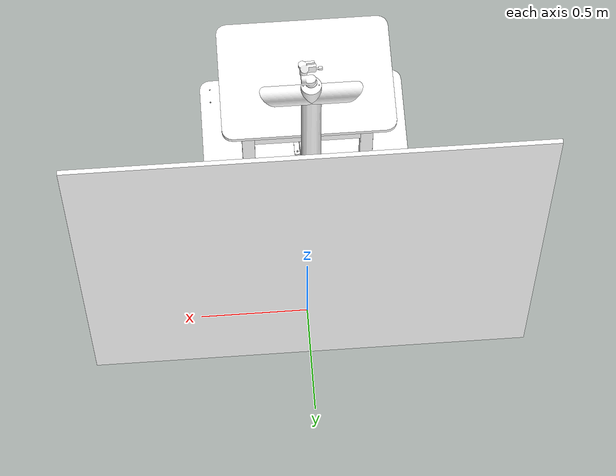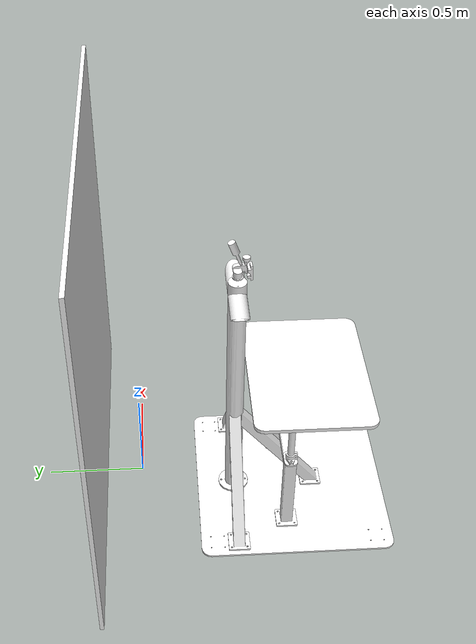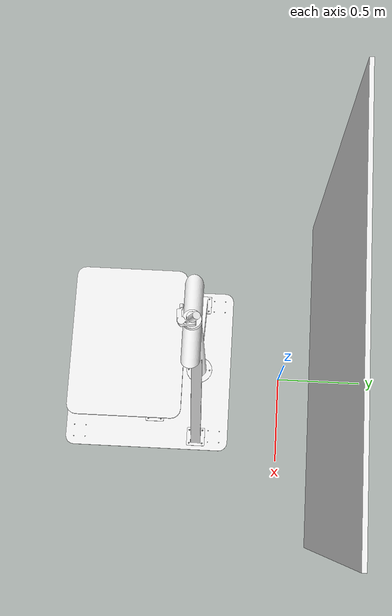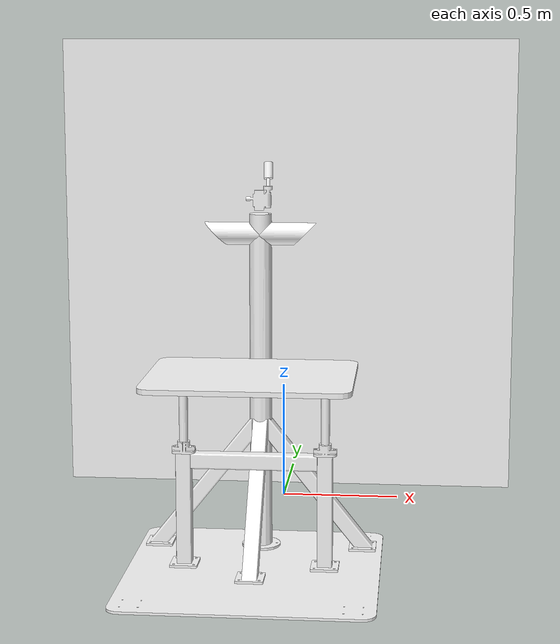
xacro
<?xml version="1.0" encoding="utf-8"?>
<robot
  name="shelf" xmlns:xacro="http://wiki.ros.org/xacro">
  <link
    name="base_link">
    <inertial>
      <origin
        xyz="-0.0514852228037534 -0.796594817886908 -0.0801908666316181"
        rpy="0 0 0" />
      <mass
        value="82.9505113272348" />
      <inertia
        ixx="6.49423912277532"
        ixy="1.14324329542244E-15"
        ixz="2.18534500391539E-19"
        iyy="6.49177902944485"
        iyz="5.93853941289837E-07"
        izz="12.9815895282492" />
    </inertial>
    <visual>
      <origin
        xyz="0 0 0"
        rpy="0 0 0" />
      <geometry>
        <mesh
          filename="package://shelf/meshes/base_link.STL" />
      </geometry>
      <material
        name="">
        <color
          rgba="1 1 1 1" />
      </material>
    </visual>
    <collision>
      <origin
        xyz="0 0 0"
        rpy="0 0 0" />
      <geometry>
        <mesh
          filename="package://shelf/meshes/base_link.STL" />
      </geometry>
    </collision>
  </link>
  <link
    name="left-obl-1">
    <inertial>
      <origin
        xyz="-0.146230246641277 0.198143279093593 -4.0652288960108E-06"
        rpy="0 0 0" />
      <mass
        value="4.15584212369352" />
      <inertia
        ixx="0.112252927087713"
        ixy="0.0837479479460412"
        ixz="-2.74721842191261E-06"
        iyy="0.0703122721434734"
        iyz="3.77730010594157E-06"
        izz="0.177260146809143" />
    </inertial>
    <visual>
      <origin
        xyz="0 0 0"
        rpy="0 0 0" />
      <geometry>
        <mesh
          filename="package://shelf/meshes/left-obl-1.STL" />
      </geometry>
      <material
        name="">
        <color
          rgba="1 1 1 1" />
      </material>
    </visual>
    <collision>
      <origin
        xyz="0 0 0"
        rpy="0 0 0" />
      <geometry>
        <mesh
          filename="package://shelf/meshes/left-obl-1.STL" />
      </geometry>
    </collision>
  </link>
  <joint
    name="joint1"
    type="fixed">
    <origin
      xyz="-0.471485222803753 -0.491470974847297 -0.0720851780501181"
      rpy="1.5707963267949 0 3.14159265358979" />
    <parent
      link="base_link" />
    <child
      link="left-obl-1" />
    <axis
      xyz="0 0 0" />
  </joint>
  <link
    name="left-stand-1">
    <inertial>
      <origin
        xyz="0.0273672467617748 -1.11022302462516E-16 0"
        rpy="0 0 0" />
      <mass
        value="2.67028289686023" />
      <inertia
        ixx="0.00314327701135894"
        ixy="-2.59915745659437E-18"
        ixz="2.75349035895795E-18"
        iyy="0.0412735877196404"
        iyz="3.72562147893883E-19"
        izz="0.0412735877196404" />
    </inertial>
    <visual>
      <origin
        xyz="0 0 0"
        rpy="0 0 0" />
      <geometry>
        <mesh
          filename="package://shelf/meshes/left-stand-1.STL" />
      </geometry>
      <material
        name="">
        <color
          rgba="1 1 1 1" />
      </material>
    </visual>
    <collision>
      <origin
        xyz="0 0 0"
        rpy="0 0 0" />
      <geometry>
        <mesh
          filename="package://shelf/meshes/left-stand-1.STL" />
      </geometry>
    </collision>
  </link>
  <joint
    name="joint2"
    type="fixed">
    <origin
      xyz="-0.331485222803753 -0.751470974847297 0.162914821949882"
      rpy="1.5707963267949 1.5707963267949 0" />
    <parent
      link="base_link" />
    <child
      link="left-stand-1" />
    <axis
      xyz="0 0 0" />
  </joint>
  <link
    name="left-stand-2">
    <inertial>
      <origin
        xyz="-0.331454620227189 -0.751874363349345 0.441742461351927"
        rpy="0 0 0" />
      <mass
        value="0.815527008228115" />
      <inertia
        ixx="0.00478624799358703"
        ixy="4.36240102322761E-07"
        ixz="-1.25219246352216E-08"
        iyy="0.00493988670099739"
        iyz="9.82143637888717E-07"
        izz="0.000590501499973922" />
    </inertial>
    <visual>
      <origin
        xyz="0 0 0"
        rpy="0 0 0" />
      <geometry>
        <mesh
          filename="package://shelf/meshes/left-stand-2.STL" />
      </geometry>
      <material
        name="">
        <color
          rgba="1 1 1 1" />
      </material>
    </visual>
    <collision>
      <origin
        xyz="0 0 0"
        rpy="0 0 0" />
      <geometry>
        <mesh
          filename="package://shelf/meshes/left-stand-2.STL" />
      </geometry>
    </collision>
  </link>
  <joint
    name="joint3"
    type="fixed">
    <origin
      xyz="0.162914821949882 0.331485222803753 -0.751470974847297"
      rpy="-1.5707963267949 0 1.5707963267949" />
    <parent
      link="left-stand-1" />
    <child
      link="left-stand-2" />
    <axis
      xyz="0 0 0" />
  </joint>
  <link
    name="plane">
    <inertial>
      <origin
        xyz="5.41233724504764E-16 0.00433401878802386 0.00759096325219621"
        rpy="0 0 0" />
      <mass
        value="14.5078298690616" />
      <inertia
        ixx="0.409405102788164"
        ixy="4.21013962832834E-17"
        ixz="-1.32852483543753E-16"
        iyy="1.19713306067493"
        iyz="7.47854805414467E-10"
        izz="0.788091434277513" />
    </inertial>
    <visual>
      <origin
        xyz="0 0 0"
        rpy="0 0 0" />
      <geometry>
        <mesh
          filename="package://shelf/meshes/plane.STL" />
      </geometry>
      <material
        name="">
        <color
          rgba="1 1 1 1" />
      </material>
    </visual>
    <collision>
      <origin
        xyz="0 0 0"
        rpy="0 0 0" />
      <geometry>
        <mesh
          filename="package://shelf/meshes/plane.STL" />
      </geometry>
    </collision>
  </link>
  <joint
    name="joint4"
    type="fixed">
    <origin
      xyz="-0.051484736632755 -0.851470680947861 0.727914821949887"
      rpy="-1.5707963267949 0 0" />
    <parent
      link="left-stand-2" />
    <child
      link="plane" />
    <axis
      xyz="0 0 0" />
  </joint>
  <link
    name="med-hor">
    <inertial>
      <origin
        xyz="9.71445146547012E-17 0 -1.11022302462516E-16"
        rpy="0 0 0" />
      <mass
        value="2.61394577447214" />
      <inertia
        ixx="0.00279390693182001"
        ixy="-2.47230875501755E-18"
        ixz="9.53836983068687E-19"
        iyy="0.0558541571007462"
        iyz="1.5034063526738E-19"
        izz="0.0558541571007462" />
    </inertial>
    <visual>
      <origin
        xyz="0 0 0"
        rpy="0 0 0" />
      <geometry>
        <mesh
          filename="package://shelf/meshes/med-hor.STL" />
      </geometry>
      <material
        name="">
        <color
          rgba="1 1 1 1" />
      </material>
    </visual>
    <collision>
      <origin
        xyz="0 0 0"
        rpy="0 0 0" />
      <geometry>
        <mesh
          filename="package://shelf/meshes/med-hor.STL" />
      </geometry>
    </collision>
  </link>
  <joint
    name="joint5"
    type="fixed">
    <origin
      xyz="-0.195 0.28 0"
      rpy="0 0 1.5707963267949" />
    <parent
      link="left-stand-1" />
    <child
      link="med-hor" />
    <axis
      xyz="0 0 0" />
  </joint>
  <link
    name="med-obl">
    <inertial>
      <origin
        xyz="-0.146230246641277 -0.198143279093594 4.06522889585814E-06"
        rpy="0 0 0" />
      <mass
        value="4.15584212369349" />
      <inertia
        ixx="0.112252927087712"
        ixy="-0.0837479479460411"
        ixz="2.74721842187913E-06"
        iyy="0.0703122721434734"
        iyz="3.77730010593314E-06"
        izz="0.177260146809142" />
    </inertial>
    <visual>
      <origin
        xyz="0 0 0"
        rpy="0 0 0" />
      <geometry>
        <mesh
          filename="package://shelf/meshes/med-obl.STL" />
      </geometry>
      <material
        name="">
        <color
          rgba="1 1 1 1" />
      </material>
    </visual>
    <collision>
      <origin
        xyz="0 0 0"
        rpy="0 0 0" />
      <geometry>
        <mesh
          filename="package://shelf/meshes/med-obl.STL" />
      </geometry>
    </collision>
  </link>
  <joint
    name="joint6"
    type="fixed">
    <origin
      xyz="-0.0514852228037534 -0.911470974847296 -0.0720851780501181"
      rpy="-1.5707963267949 0 -1.5707963267949" />
    <parent
      link="base_link" />
    <child
      link="med-obl" />
    <axis
      xyz="0 0 0" />
  </joint>
  <link
    name="med-stand">
    <inertial>
      <origin
        xyz="-1.46494910507888E-08 0.572378024888155 -7.52363277789492E-08"
        rpy="0 0 0" />
      <mass
        value="14.7424134189067" />
      <inertia
        ixx="2.31467894564188"
        ixy="8.81402147902437E-08"
        ixz="-1.0076441517696E-07"
        iyy="0.0288535915339863"
        iyz="4.31291163745656E-07"
        izz="2.31453488216497" />
    </inertial>
    <visual>
      <origin
        xyz="0 0 0"
        rpy="0 0 0" />
      <geometry>
        <mesh
          filename="package://shelf/meshes/med-stand.STL" />
      </geometry>
      <material
        name="">
        <color
          rgba="1 1 1 1" />
      </material>
    </visual>
    <collision>
      <origin
        xyz="0 0 0"
        rpy="0 0 0" />
      <geometry>
        <mesh
          filename="package://shelf/meshes/med-stand.STL" />
      </geometry>
    </collision>
  </link>
  <joint
    name="joint7"
    type="fixed">
    <origin
      xyz="-0.0514852228037534 -0.491470974847297 -0.0720851780501181"
      rpy="1.5707963267949 0 0" />
    <parent
      link="base_link" />
    <child
      link="med-stand" />
    <axis
      xyz="0 0 0" />
  </joint>
  <link
    name="robot-link">
    <inertial>
      <origin
        xyz="-9.63489824160058E-07 0.005040362403822 3.09816322596745E-08"
        rpy="0 0 0" />
      <mass
        value="3.77346536057482" />
      <inertia
        ixx="0.00674299382821359"
        ixy="1.96959082237102E-08"
        ixz="-1.67209603465006E-07"
        iyy="0.0475922855617016"
        iyz="5.72772129220253E-07"
        izz="0.0475026925972196" />
    </inertial>
    <visual>
      <origin
        xyz="0 0 0"
        rpy="0 0 0" />
      <geometry>
        <mesh
          filename="package://shelf/meshes/robot-link.STL" />
      </geometry>
      <material
        name="">
        <color
          rgba="1 1 1 1" />
      </material>
    </visual>
    <collision>
      <origin
        xyz="0 0 0"
        rpy="0 0 0" />
      <geometry>
        <mesh
          filename="package://shelf/meshes/robot-link.STL" />
      </geometry>
    </collision>
  </link>
  <joint
    name="joint8"
    type="fixed">
    <origin
      xyz="0 1.3 0"
      rpy="0 0 0" />
    <parent
      link="med-stand" />
    <child
      link="robot-link" />
    <axis
      xyz="0 0 0" />
  </joint>
  <link
    name="camera-link">
    <inertial>
      <origin
        xyz="0.0188110055138636 0.0661923994225302 0.0161449417414519"
        rpy="0 0 0" />
      <mass
        value="0.872425770345966" />
      <inertia
        ixx="0.00244716206477518"
        ixy="-0.000261928417905963"
        ixz="0.000218895130185953"
        iyy="0.00099685686142719"
        iyz="0.000760431412569529"
        izz="0.00211018122757907" />
    </inertial>
    <visual>
      <origin
        xyz="0 0 0"
        rpy="0 0 0" />
      <geometry>
        <mesh
          filename="package://shelf/meshes/camera-link.STL" />
      </geometry>
      <material
        name="">
        <color
          rgba="1 1 1 1" />
      </material>
    </visual>
    <collision>
      <origin
        xyz="0 0 0"
        rpy="0 0 0" />
      <geometry>
        <mesh
          filename="package://shelf/meshes/camera-link.STL" />
      </geometry>
    </collision>
  </link>
  <joint
    name="joint9"
    type="fixed">
    <origin
      xyz="0 1.39620680392648 0"
      rpy="0 0.0531011503420065 0" />
    <parent
      link="med-stand" />
    <child
      link="camera-link" />
    <axis
      xyz="0 1 0" />
  </joint>
  <link
    name="camera-plane">
    <inertial>
      <origin
        xyz="0.0235022334270483 8.54500610443509E-07 4.88753388871999E-08"
        rpy="0 0 0" />
      <mass
        value="0.183429013845526" />
      <inertia
        ixx="0.000272348515470441"
        ixy="-3.33924915522238E-10"
        ixz="1.94108216993615E-08"
        iyy="0.000207894817707231"
        iyz="-8.81963467726778E-09"
        izz="0.000173263237215077" />
    </inertial>
    <visual>
      <origin
        xyz="0 0 0"
        rpy="0 0 0" />
      <geometry>
        <mesh
          filename="package://shelf/meshes/camera-plane.STL" />
      </geometry>
      <material
        name="">
        <color
          rgba="1 1 1 1" />
      </material>
    </visual>
    <collision>
      <origin
        xyz="0 0 0"
        rpy="0 0 0" />
      <geometry>
        <mesh
          filename="package://shelf/meshes/camera-plane.STL" />
      </geometry>
    </collision>
  </link>
  <joint
    name="joint10"
    type="fixed">
    <origin
      xyz="0 1.34 0"
      rpy="3.14159265358979 0 1.5707963267949" />
    <parent
      link="med-stand" />
    <child
      link="camera-plane" />
    <axis
      xyz="0 0 0" />
  </joint>
  <link
    name="right-stand-1">
    <inertial>
      <origin
        xyz="1.11022302462516E-16 0.202632753238225 2.77555756156289E-17"
        rpy="0 0 0" />
      <mass
        value="2.67028289686023" />
      <inertia
        ixx="0.0412735877196404"
        ixy="-3.63596812490042E-18"
        ixz="-3.6419340654032E-19"
        iyy="0.00314327701135895"
        iyz="-3.86610543425552E-19"
        izz="0.0412735877196404" />
    </inertial>
    <visual>
      <origin
        xyz="0 0 0"
        rpy="0 0 0" />
      <geometry>
        <mesh
          filename="package://shelf/meshes/right-stand-1.STL" />
      </geometry>
      <material
        name="">
        <color
          rgba="1 1 1 1" />
      </material>
    </visual>
    <collision>
      <origin
        xyz="0 0 0"
        rpy="0 0 0" />
      <geometry>
        <mesh
          filename="package://shelf/meshes/right-stand-1.STL" />
      </geometry>
    </collision>
  </link>
  <joint
    name="joint11"
    type="fixed">
    <origin
      xyz="0.228514777196247 -0.751470974847297 -0.0670851780501181"
      rpy="1.5707963267949 0 1.5707963267949" />
    <parent
      link="base_link" />
    <child
      link="right-stand-1" />
    <axis
      xyz="0 0 0" />
  </joint>
  <link
    name="right-stand-2">
    <inertial>
      <origin
        xyz="-0.000399983538058812 6.05967866887103E-05 0.133826085117827"
        rpy="0 0 0" />
      <mass
        value="0.815527008228115" />
      <inertia
        ixx="0.00493197661394082"
        ixy="-3.39546223518627E-05"
        ixz="9.59958853220206E-07"
        iyy="0.00479415808064358"
        iyz="-2.0794692632116E-07"
        izz="0.000590501499973921" />
    </inertial>
    <visual>
      <origin
        xyz="0 0 0"
        rpy="0 0 0" />
      <geometry>
        <mesh
          filename="package://shelf/meshes/right-stand-2.STL" />
      </geometry>
      <material
        name="">
        <color
          rgba="1 1 1 1" />
      </material>
    </visual>
    <collision>
      <origin
        xyz="0 0 0"
        rpy="0 0 0" />
      <geometry>
        <mesh
          filename="package://shelf/meshes/right-stand-2.STL" />
      </geometry>
    </collision>
  </link>
  <joint
    name="joint12"
    type="fixed">
    <origin
      xyz="0 0.375 0"
      rpy="-1.5707963267949 0.22607359901695 0" />
    <parent
      link="right-stand-1" />
    <child
      link="right-stand-2" />
    <axis
      xyz="0 0 0" />
  </joint>
  <link
    name="right-obl-1">
    <inertial>
      <origin
        xyz="-0.146230246641277 0.198143279093593 -4.06522889628835E-06"
        rpy="0 0 0" />
      <mass
        value="4.15584212369344" />
      <inertia
        ixx="0.112252927087711"
        ixy="0.0837479479460399"
        ixz="-2.7472184220464E-06"
        iyy="0.0703122721434724"
        iyz="3.77730010610742E-06"
        izz="0.17726014680914" />
    </inertial>
    <visual>
      <origin
        xyz="0 0 0"
        rpy="0 0 0" />
      <geometry>
        <mesh
          filename="package://shelf/meshes/right-obl-1.STL" />
      </geometry>
      <material
        name="">
        <color
          rgba="1 1 1 1"/>
      </material>
    </visual>
    <collision>
      <origin
        xyz="0 0 0"
        rpy="0 0 0" />
      <geometry>
        <mesh
          filename="package://shelf/meshes/right-obl-1.STL" />
      </geometry>
    </collision>
  </link>
  <joint
    name="joint13"
    type="fixed">
    <origin
      xyz="0.368514777196247 -0.491470974847297 -0.0720851780501181"
      rpy="1.5707963267949 0 0" />
    <parent
      link="base_link" />
    <child
      link="right-obl-1" />
    <axis
      xyz="0 0 0" />
  </joint>
   <link
    name="wall">
    <inertial>
      <origin
        xyz="0 0 0"
        rpy="0 0 0" />
      <mass
        value="0.1" />
      <inertia
        ixx="0.1"
        ixy="0.0"
        ixz="0.0"
        iyy="0.1"
        iyz="0.0"
        izz="0.1" />
    </inertial>
    <visual>
      <origin
        xyz="0 0 0"
        rpy="0 0 0" />
      <geometry>
        <box size="2.0 0.02 2.0" />
      </geometry>
      <material
        name="">
        <color
          rgba="1 1 1 1"/>
      </material>
    </visual>
    <collision>
      <origin
        xyz="0 0 0"
        rpy="0 0 0" />
      <geometry>
        <box size="2.0 0.02 2.0" />
      </geometry>
    </collision>
  </link>
  <joint
    name="joint14"
    type="fixed">
    <origin
      xyz="0.0 0.2 1.0"
      rpy="0.0 0.0 0.0" />
    <parent
      link="base_link" />
    <child
      link="wall" />
    <axis
      xyz="0 0 0" />
  </joint>

</robot>
